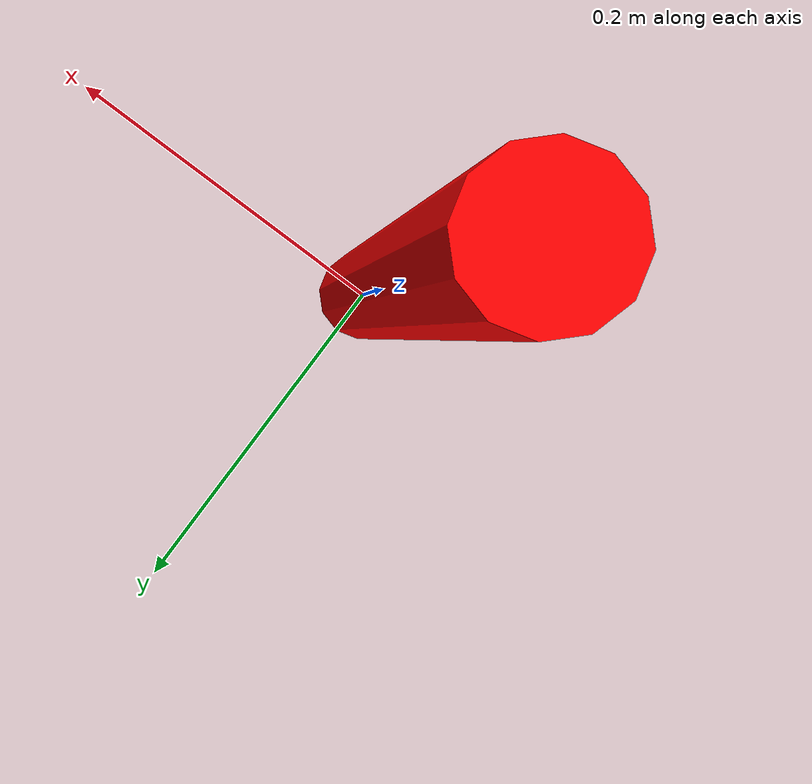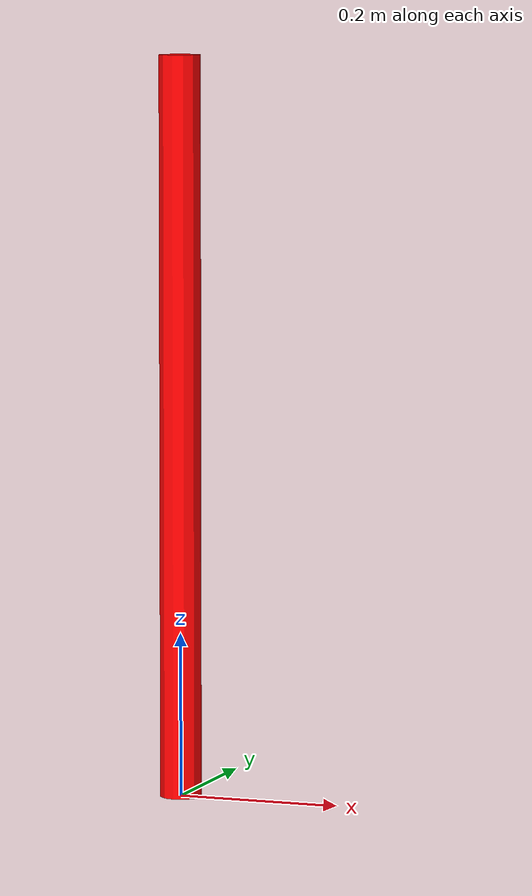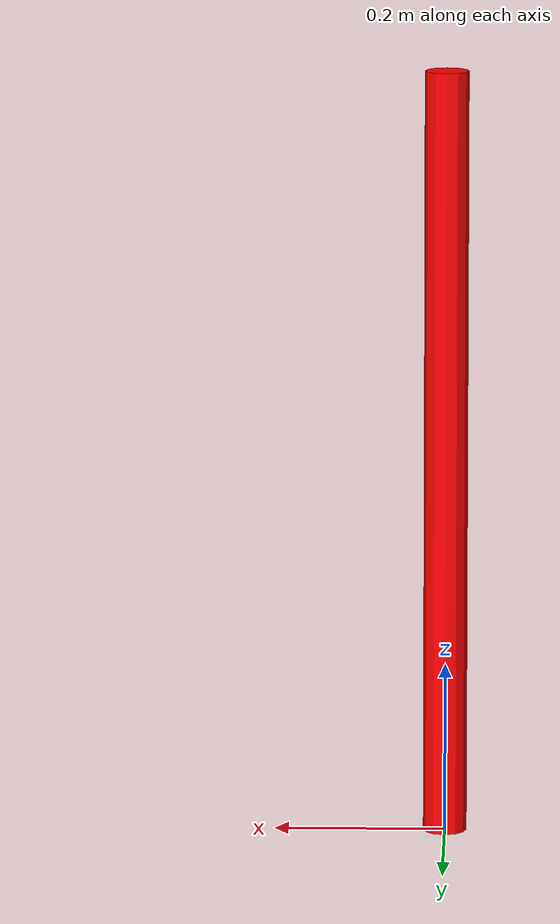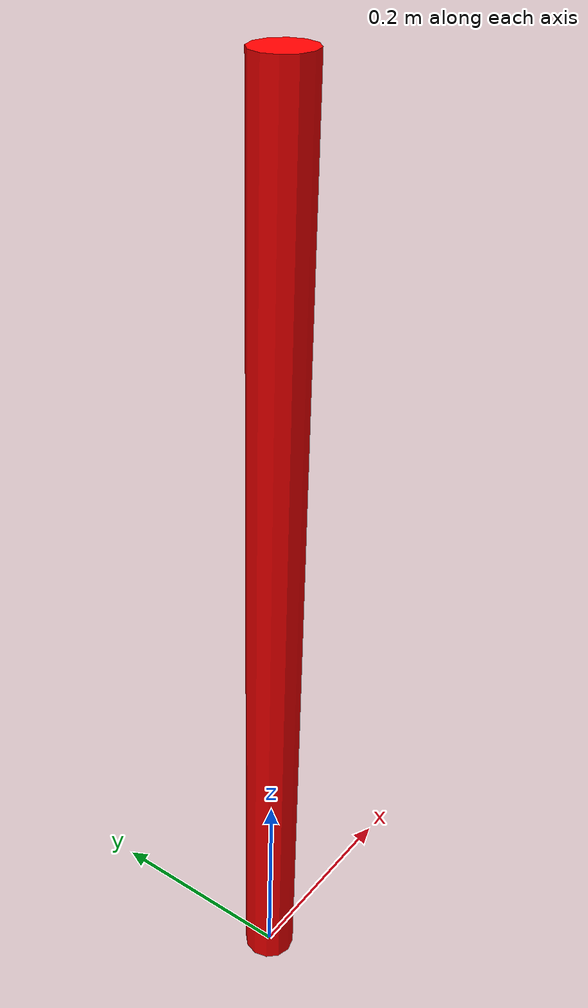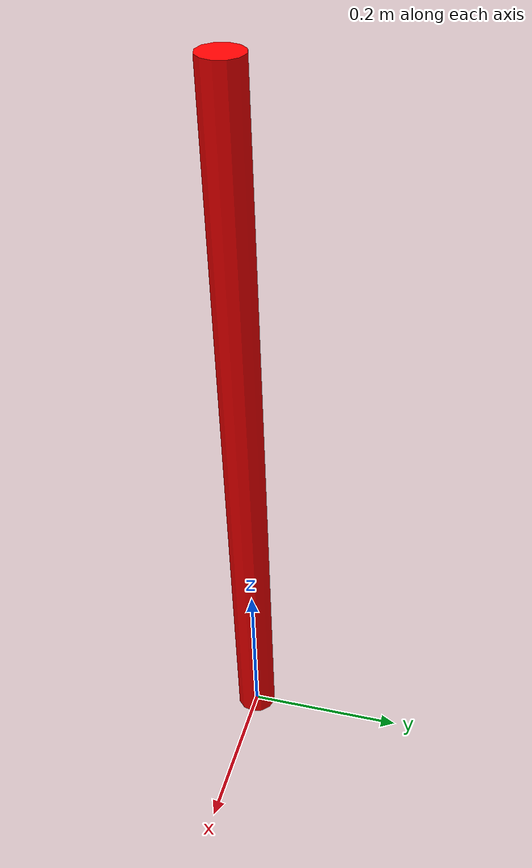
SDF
<sdf version='1.9'>
  <model name='slalom_red'>
    <static>true</static>
    <link name='base_link'>
      <inertial>
        <pose>-4.6434e-19 0.45 -4.9507e-19 0 0 0</pose>
        <mass>1.8241</mass>
        <inertia>
          <ixx>0.12342</ixx>
          <ixy>2.5172e-35</ixy>
          <ixz>4.1934e-37</ixz>
          <iyy>0.00058843</iyy>
          <iyz>-1.0778e-35</iyz>
          <izz>0.12342</izz>
        </inertia>
      </inertial>
      <collision name='base_link_collision'>
        <pose>0 0 0 0 0 0</pose>
        <geometry>
          <mesh>
            <scale>1 1 1</scale>
            <uri>model://slalom_red/meshes/base_link.STL</uri>
          </mesh>
        </geometry>
      </collision>
      <visual name='base_link_visual'>
        <pose>0 0 0 0 0 0</pose>
        <geometry>
          <mesh>
            <scale>1 1 1</scale>
            <uri>model://slalom_red/meshes/base_link.STL</uri>
          </mesh>
        </geometry>
        <material>
          <diffuse>1 0 0 1</diffuse>
          <ambient>1 0 0 1</ambient>
        </material>
      </visual>
    </link>
  </model>
</sdf>
